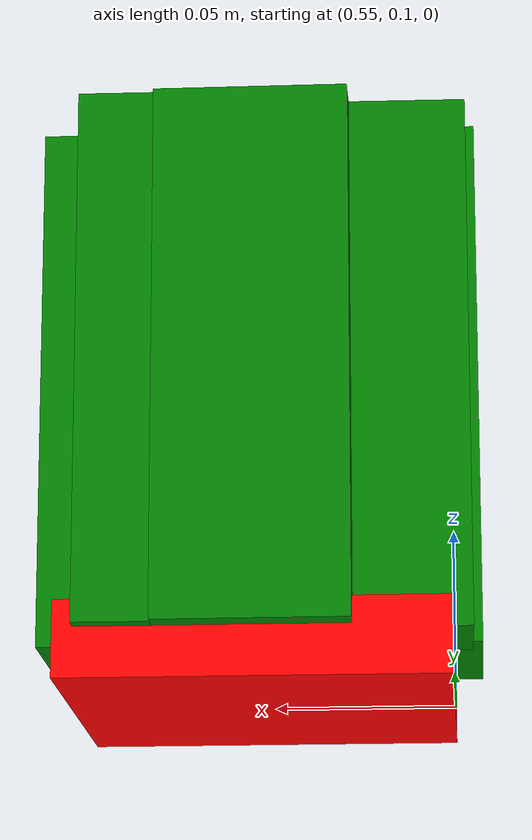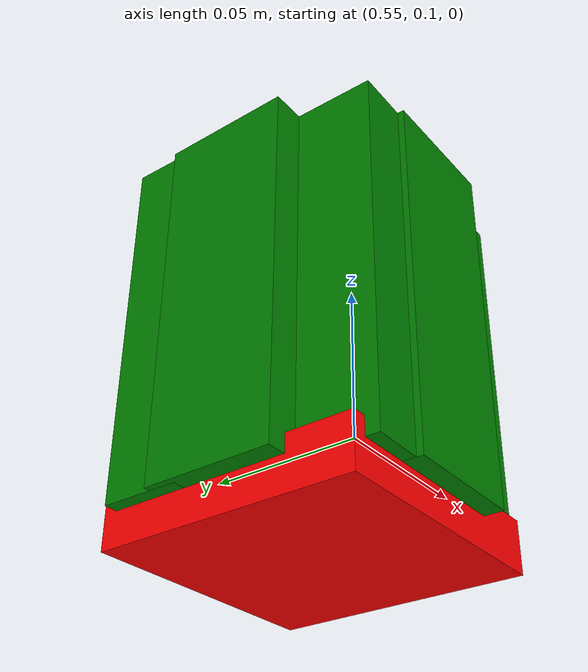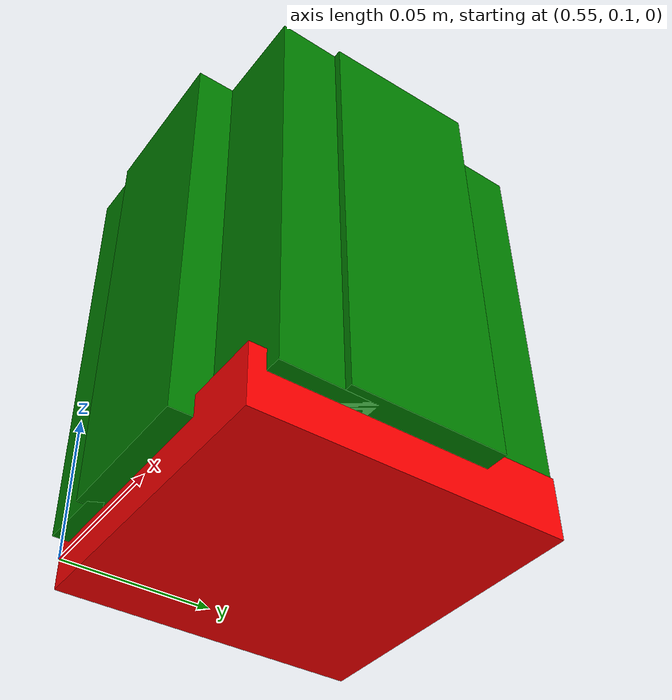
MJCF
<mujoco model="round_box">
  <worldbody>
      <body name="round_box" pos="0.6 0.15 0.0" quat="1 0 0 0">
        <geom pos="0 0 0" size="0.05 0.05 0.01" rgba="1 0 0 1.0" type="box" mass="1.0" friction="0.3 0.001 0.0001" priority="1"/>
        <geom pos="-0.04245 0 0.073" size="0.015 0.025 0.07" rgba="0 0.5 0 1.0" type="box" mass="0.001"/>
        <geom pos="0.04245 0 0.073" size="0.015 0.025 0.07" rgba="0 0.5 0 1.0" type="box" mass="0.001"/>
        <geom pos="0 -0.04245 0.073" size="0.025 0.015 0.07" rgba="0 0.5 0 1.0" type="box" mass="0.001"/>
        <geom pos="0 0.04245 0.073" size="0.025 0.015 0.07" rgba="0 0.5 0 1.0" type="box" mass="0.001"/>

        <geom pos="-0.03 -0.03 0.073" size="0.015 0.025 0.07" rgba="0 0.5 0 1.0" euler='0 0 0.785398' type="box" mass="0.001"/>
        <geom pos="0.03 0.03 0.073" size="0.015 0.025 0.07" rgba="0 0.5 0 1.0" euler='0 0 0.785398' type="box" mass="0.001"/>
        <geom pos="0.03 -0.03 0.073" size="0.025 0.015 0.07" rgba="0 0.5 0 1.0" euler='0 0 0.785398' type="box" mass="0.001"/>
        <geom pos="-0.03 0.03 0.073" size="0.025 0.015 0.07" rgba="0 0.5 0 1.0" euler='0 0 0.785398' type="box" mass="0.001"/>

        <joint name="round_box_joint" type="free"/>

    </body>
  </worldbody>
</mujoco>
